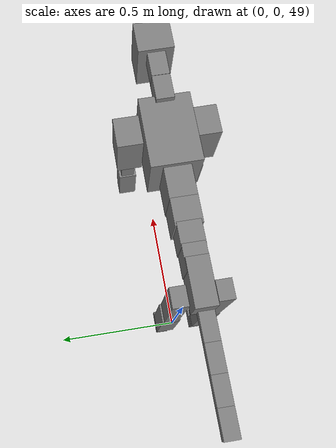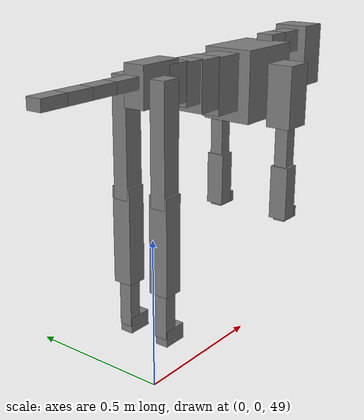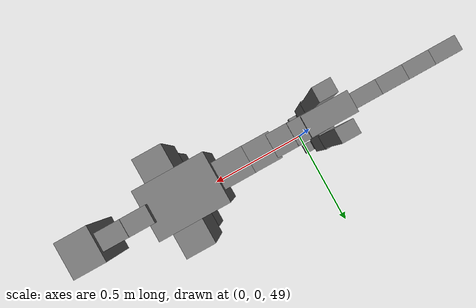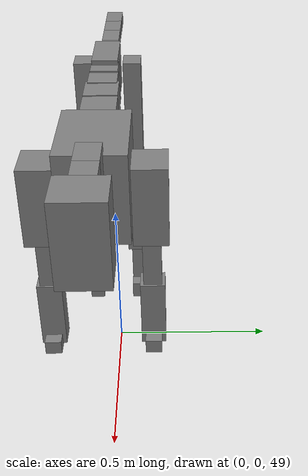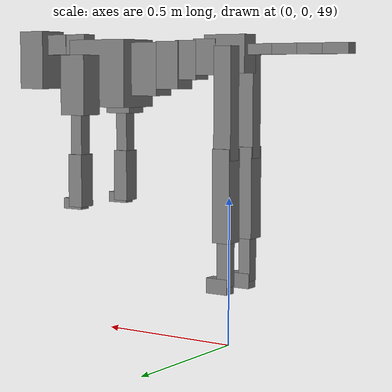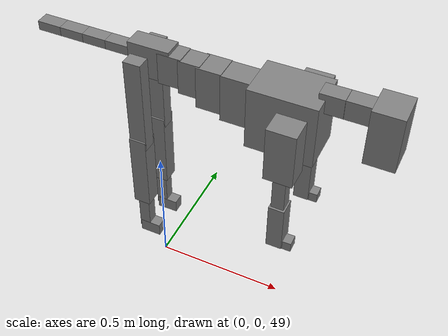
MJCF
<mujoco model="dog">

    <default>
        <joint armature="0.02" stiffness="1" damping="0.2" limited="true"/>
        <geom condim="3" friction="1 0.05 0.05" margin="0.01"/>
        <motor ctrllimited="true" ctrlrange="-1.0 1.0" forcelimited="true" gear="50"/>
    </default>

    <compiler inertiafromgeom="true" angle="radian"/>

    <option timestep="0.016" iterations="50" tolerance="1e-10" solver="Newton" jacobian="dense" cone="pyramidal"/>

    <size nconmax="20000" njmax="60000" nstack="5000000"/>
    <visual>
        <map force="0.1" zfar="30"/>
        <rgba haze="0.15 0.25 0.35 1"/>
        <quality shadowsize="2048"/>
        <global offwidth="800" offheight="800"/>
    </visual>

    <asset>
        <texture type="skybox" builtin="gradient" rgb1="0.3 0.5 0.7" rgb2="0 0 0" width="512" height="512"/>
        <texture name="texplane" type="2d" builtin="checker" rgb1=".2 .3 .4" rgb2=".1 0.15 0.2" width="512" height="512"
                 mark="cross" markrgb=".8 .8 .8"/>
        <texture name="texgeom" type="cube" builtin="flat" mark="cross" width="127" height="1278" rgb1="0.8 0.6 0.4"
                 rgb2="0.8 0.6 0.4" markrgb="1 1 1" random="0.01"/>

        <material name="matplane" reflectance="0.3" texture="texplane" texrepeat="1 1" texuniform="true"/>
        <material name="matgeom" texture="texgeom" texuniform="true" rgba="0.8 0.6 .4 1"/>
    </asset>

    <worldbody>
        <geom name="floor" pos="0 0 0" size="0 0 .25" type="plane" material="matplane" condim="3"/>

        <light directional="false" diffuse=".2 .2 .2" specular="0 0 0" pos="0 0 5" dir="0 0 -1" castshadow="false"/>
        <light mode="targetbodycom" target="torso" directional="false" diffuse=".8 .8 .8" specular="0.3 0.3 0.3"
               pos="0 0 4.0" dir="0 0 -1"/>

        <body name="root" pos="0 0 50">
            <freejoint name="root_1"/>
            <geom type="box" pos="0 0 -0.02" size="0.0774  0.0358  0.063" density="2030"/>

            <body name="spine1" pos="0.054 0 0">
                <joint name="spine1_y" axis="0 1 0" range="0 0.7" limited="true"/>
                <geom type="box" pos="0.02375 0 -0.03" size="0.04375  0.0375  0.05985" density="2030"/>

                <body name="spine2" pos="0.0612 0 0">
                    <joint name="spine2_y" axis="0 1 0" range="-0.15 0.15" limited="true"/>
                    <geom type="box" pos="0.03555  0  -0.04" size="0.04055  0.039  0.06615" density="2030"/>

                    <body name="spine3" pos="0.0730 0 0">
                        <joint name="spine3_y" axis="0 1 0" range="-0.15 0.15" limited="true"/>
                        <geom type="box" pos="0.03555  0  -0.057" size="0.04555  0.0445  0.081" density="2030"/>

                        <body name="spine4" pos="0.0780 0 0">
                            <joint name="spine4_y" axis="0 1 0" range="-0.15 0.15" limited="true"/>
                            <geom type="box" pos="0.05265  0  -0.07" size="0.05265  0.045  0.09135" density="2030"/>

                            <body name="torso" pos="0.1082 0 0">
                                <joint name="torso_y" axis="0 1 0" range="-0.15 0.15" limited="true"/>
                                <geom type="box" pos="0.11925  0  -0.085" size="0.11925  0.085  0.11745"
                                      density="2030"/>

                                <body name="neck1" pos="0.2160  0   0.0180">
                                    <joint name="neck1_y" axis="0 1 0" range="-1.2  -1" limited="true"/>
                                    <geom type="box" pos="0.0423  0  0" size="0.0423  0.03  0.036" density="2325"/>

                                    <body name="neck2" pos="0.0853  0  0">
                                        <joint name="neck2_y" axis="0 1 0" range="0.1  0" limited="true"/>
                                        <geom type="box" pos="0.0423  0  0" size="0.0423  0.03  0.036" density="2325"/>

                                        <body name="head" pos="0.0853  0  0">
                                            <joint name="head_y" axis="0 1 0" range="-0.3  -0.2" limited="true"/>
                                            <geom type="box" pos="0.0531  0  -0.055" size="0.0531  0.06  0.1044"
                                                  density="4030"/>

                                        </body>
                                    </body>
                                </body>

                                <body name="front_shoulder" pos="0.156  0   -0.0480">
                                    <joint name="front_shoulder_y" axis="0 1 0" range="-1 1.5" limited="true"/>
                                    <geom type="box" pos="0 0.13 -0.0770" size="0.0508  0.0434  0.1036" density="1158"/>
                                    <geom type="box" pos="0 -0.13 -0.0770" size="0.0508  0.0434  0.1036"
                                          density="1158"/>

                                    <body name="front_elbow" pos="0  0  -0.1540">
                                        <joint name="front_elbow_y" axis="0 1 0" range="-2 0" limited="true"/>
                                        <geom type="box" pos="0 0.13 -0.0882" size="0.0228  0.0233  0.0882"
                                              density="1081"/>
                                        <geom type="box" pos="0 -0.13 -0.0882" size="0.0228  0.0233  0.0882"
                                              density="1081"/>

                                        <body name="front_wrist" pos="0  0  -0.1764">
                                            <joint name="front_wrist_y" axis="0 1 0" range="-0.2 0" limited="true"/>
                                            <geom type="box" pos="0 0.13 -0.0783" size="0.0283  0.0315  0.0915"
                                                  density="1664"/>
                                            <geom type="box" pos="0 -0.13 -0.0783" size="0.0283  0.0315  0.0915"
                                                  density="1664"/>

                                            <body name="front_finger_end" pos="0  0  -0.1567">
                                                <joint name="front_finger_y" axis="0 1 0" range="-0.4 1"
                                                       limited="true"/>
                                                <geom type="box" pos="0.0210  0.13  -0.0038"
                                                      size="0.0386  0.0210  0.0188" density="1515"/>
                                                <geom type="box" pos="0.0210  -0.13  -0.0038"
                                                      size="0.0386  0.0210  0.0188" density="1515"/>

                                            </body>

                                        </body>
                                    </body>
                                </body>

                            </body>
                        </body>
                    </body>
                </body>
            </body>

            <body name="back_hip" pos="-0.03 0 -0.018">
                <joint name="back_hip_y" axis="0 1 0" range="-1.5 0.3" limited="true"/>
                <geom type="box" pos="0 0.07 -0.1634" size="0.0325  0.0255  0.1862" density="1154"/>
                <geom type="box" pos="0 -0.07 -0.1634" size="0.0325  0.0255  0.1862" density="1154"/>

                <body name="back_knee" pos="0  0  -0.3267">
                    <joint name="back_knee_y" axis="0 1 0" range="0 2.8" limited="true"/>
                    <geom type="box" pos="0 0.07 -0.1389" size="0.0323  0.0318  0.1544" density="1227"/>
                    <geom type="box" pos="0 -0.07 -0.1389" size="0.0323  0.0318  0.1544" density="1227"/>

                    <body name="back_ankle" pos="0  0  -0.2777">
                        <joint name="back_ankle_y" axis="0 1 0" range="-2.2 0" limited="true"/>
                        <geom type="box" pos="0 0.07 -0.0753" size="0.0212  0.0212  0.0866" density="1284"/>
                        <geom type="box" pos="0 -0.07 -0.0753" size="0.0212  0.0212  0.0866" density="1284"/>

                        <body name="back_toe_end" pos="0  0  -0.1507">
                            <joint name="back_toe_y" axis="0 1 0" range="-0.4 1" limited="true"/>
                            <geom type="box" pos="0.0217  0.07  -0.0108" size="0.0397  0.0217  0.0258" density="1515"/>
                            <geom type="box" pos="0.0217  -0.07  -0.0108" size="0.0397  0.0217  0.0258" density="1515"/>

                        </body>
                    </body>
                </body>
            </body>

            <body name="tail1" pos="-0.074 0 -0.006">
                <joint name="tail1_y" axis="0 1 0" range="-0.2 0.2" limited="true"/>
                <geom type="box" pos="-0.0536  0  0" size="0.045  0.025  0.0175" density="1587"/>

                <body name="tail2" pos="-0.09 0 0">
                    <joint name="tail2_y" axis="0 1 0" range="-0.2 0.2" limited="true"/>
                    <geom type="box" pos="-0.0536  0  0" size="0.045  0.025  0.0175" density="1587"/>

                    <body name="tail3" pos="-0.09 0 0">
                        <joint name="tail3_y" axis="0 1 0" range="-0.2 0.2" limited="true"/>
                        <geom type="box" pos="-0.0536  0  0" size="0.045  0.025  0.0175" density="1587"/>

                        <body name="tail4" pos="-0.09 0 0">
                            <joint name="tail4_y" axis="0 1 0" range="-0.2 0.2" limited="true"/>
                            <geom type="box" pos="-0.0536  0  0" size="0.045  0.025  0.0175" density="1587"/>

                        </body>
                    </body>
                </body>
            </body>
        </body>
    </worldbody>

    <actuator>
        <motor joint="spine1_y" forcerange="-150 150     "/>
        <motor joint="spine2_y" forcerange="-150 150     "/>
        <motor joint="spine3_y" forcerange="-150 150     "/>
        <motor joint="spine4_y" forcerange="-150 150     "/>
        <motor joint="torso_y" forcerange="-150 150     "/>
        <motor joint="neck1_y" forcerange="-100 100       "/>
        <motor joint="neck2_y" forcerange="-100 100       "/>
        <motor joint="head_y" forcerange="-150 150       "/>
        <motor joint="front_shoulder_y" forcerange="-196.17 193.32"/>
        <motor joint="front_elbow_y" forcerange="-149.11 120.05"/>
        <motor joint="front_wrist_y" forcerange="-124.26 127.69"/>
        <motor joint="front_finger_y" forcerange="-42.31 29.92"/>
        <motor joint="back_hip_y" forcerange="-227.76 311.73"/>
        <motor joint="back_knee_y" forcerange="-355.59 306.92"/>
        <motor joint="back_angle_y" forcerange="-103.11 136.61"/>
        <motor joint="back_toe_y" forcerange="-56.16 37.25"/>
        <motor joint="tail1_y" forcerange="-50 50     "/>
        <motor joint="tail2_y" forcerange="-50 50     "/>
        <motor joint="tail3_y" forcerange="-50 50     "/>
        <motor joint="tail4_y" forcerange="-50 50     "/>
    </actuator>
</mujoco>
